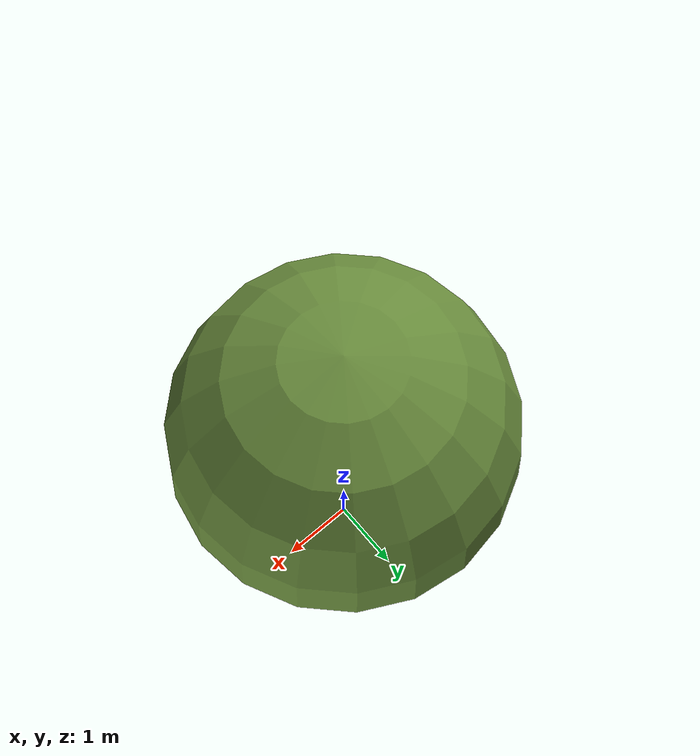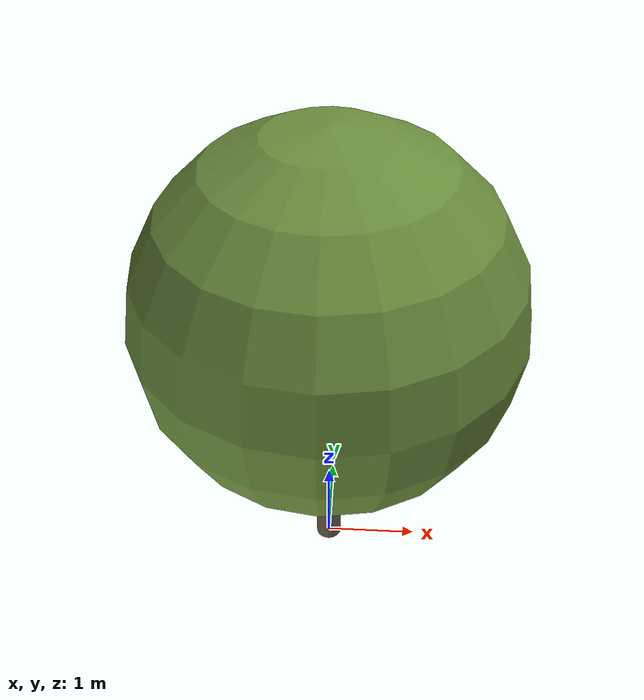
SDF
<?xml version="1.0" ?>
<sdf version="1.10">
  <model name="olivier_provence_19">
    <static>true</static>

    <!-- Tronc -->
    <link name="trunk">
      <pose>0 0 1.3426730874453865 0 0 0</pose>
      <visual name="trunk_visual">
        <geometry>
          <cylinder>
            <radius>0.13951431522868601</radius>
            <length>2.685346174890773</length>
          </cylinder>
        </geometry>
        <material>
          <ambient>0.42 0.36 0.30 1</ambient>
          <diffuse>0.42 0.36 0.30 1</diffuse>
          <specular>0.1 0.1 0.1 1</specular>
        </material>
      </visual>
      <collision name="trunk_collision">
        <geometry>
          <cylinder>
            <radius>0.13951431522868601</radius>
            <length>2.685346174890773</length>
          </cylinder>
        </geometry>
      </collision>
    </link>

    <!-- Feuillage -->
    <link name="crown">
      <pose>0 0 3.2683841704772605 0 0 0</pose>
      <visual name="crown_visual">
        <geometry>
          <sphere>
              <radius>1.9434599852882912</radius>
            </sphere>
        </geometry>
        <material>
          <ambient>0.42 0.56 0.24 1</ambient>
          <diffuse>0.42 0.56 0.24 1</diffuse>
          <specular>0.1 0.1 0.1 1</specular>
        </material>
      </visual>
      <collision name="crown_collision">
        <geometry>
          <sphere>
            <radius>1.5547679882306331</radius>
          </sphere>
        </geometry>
      </collision>
    </link>

    <!-- Joint tronc-feuillage -->
    <joint name="trunk_crown_joint" type="fixed">
      <parent>trunk</parent>
      <child>crown</child>
    </joint>

  </model>
</sdf>
